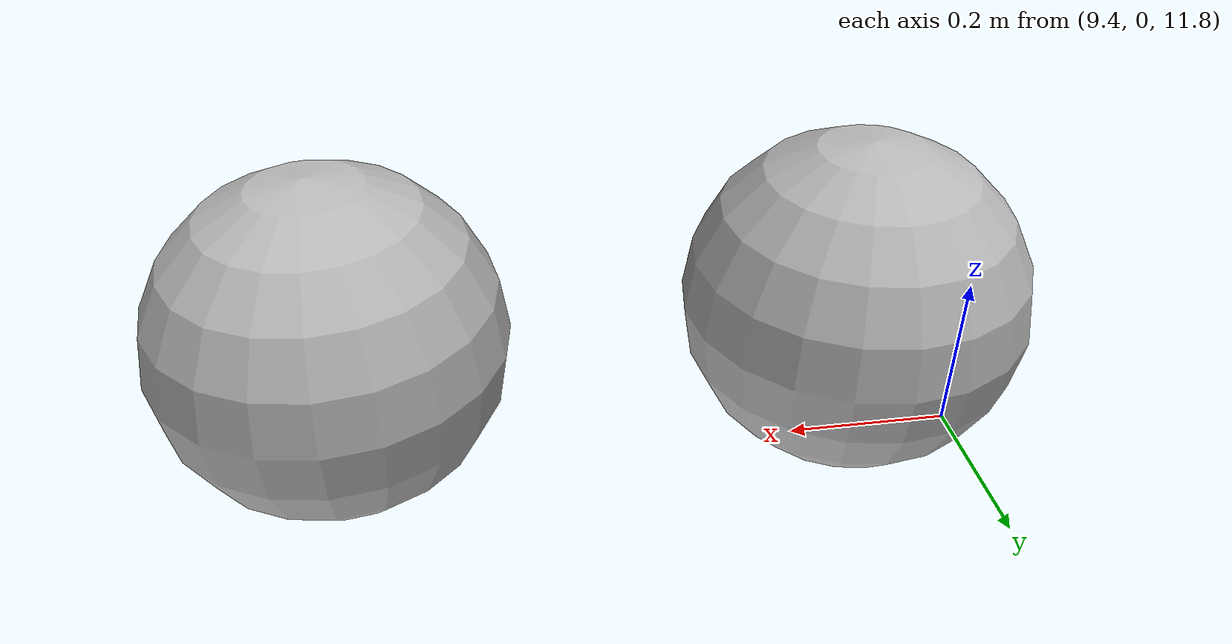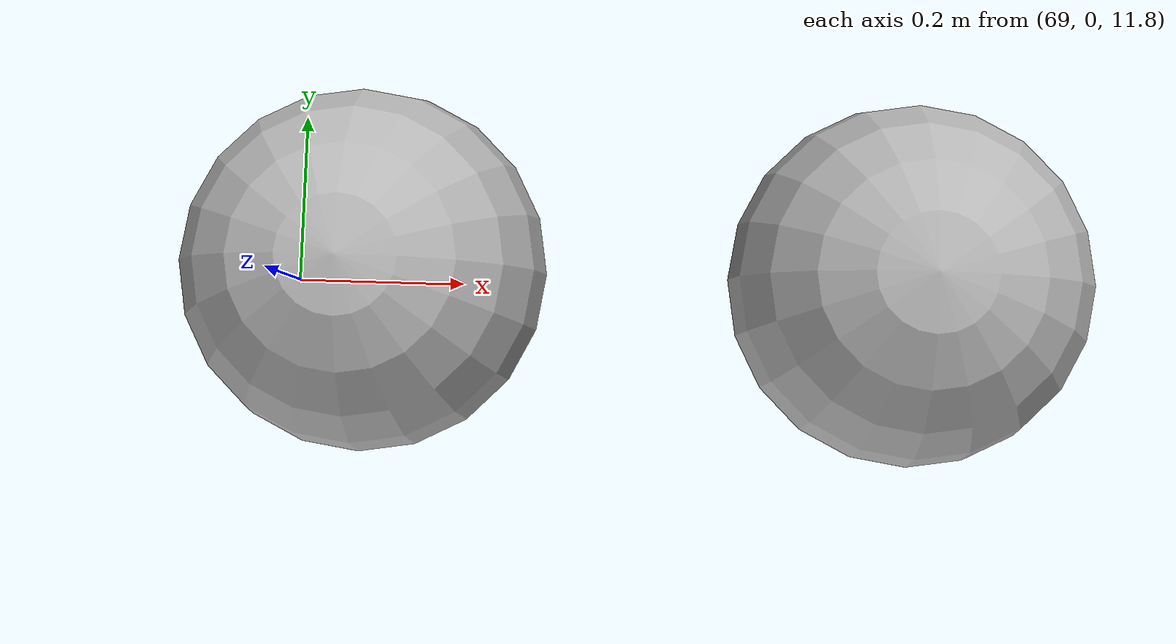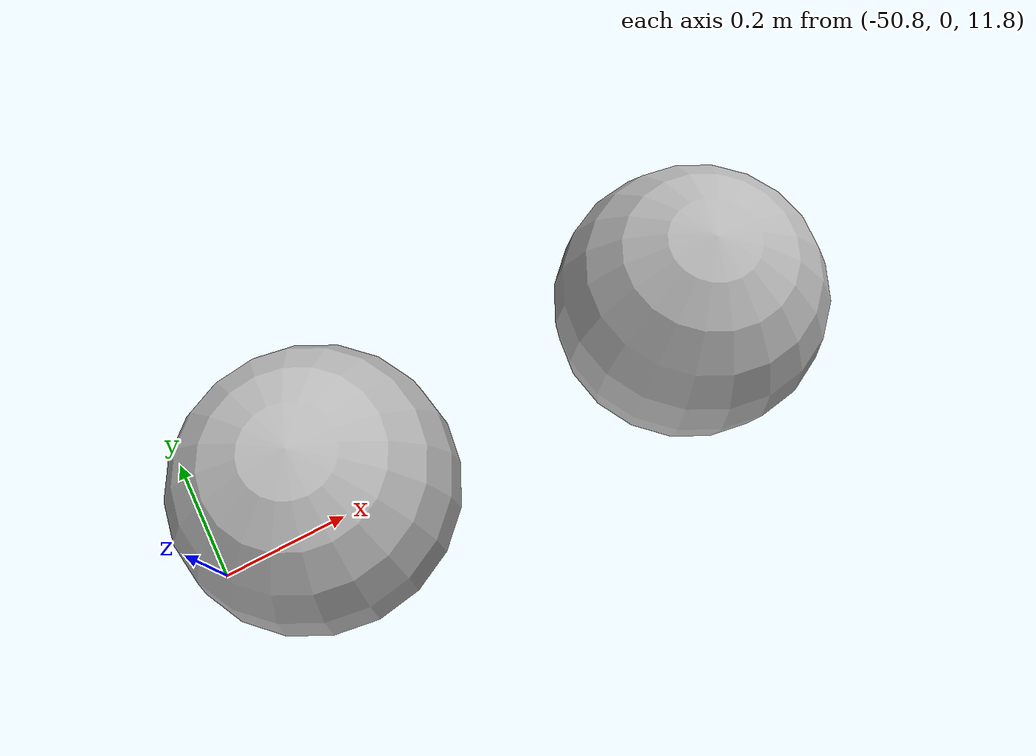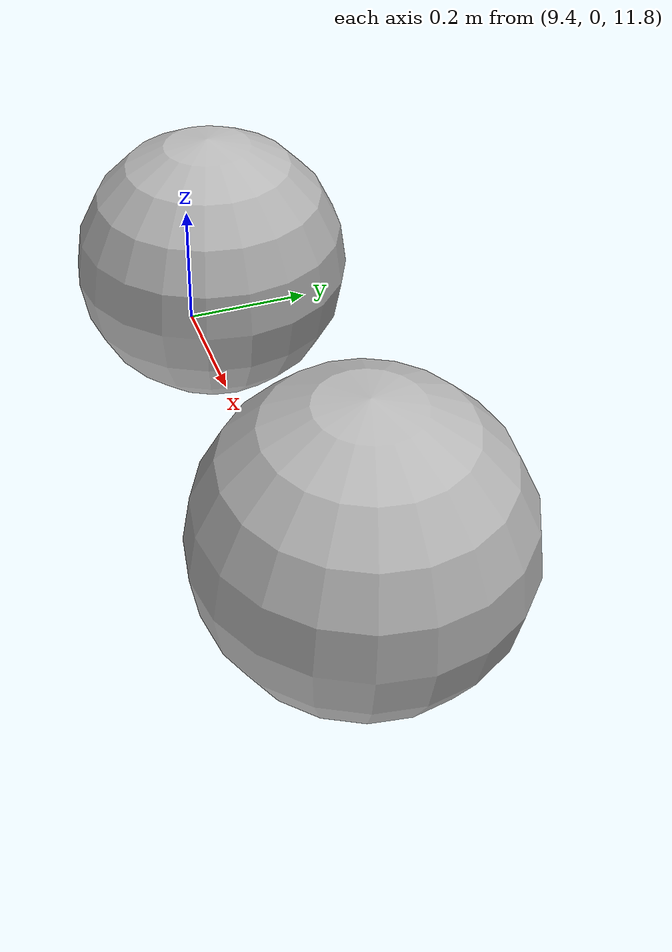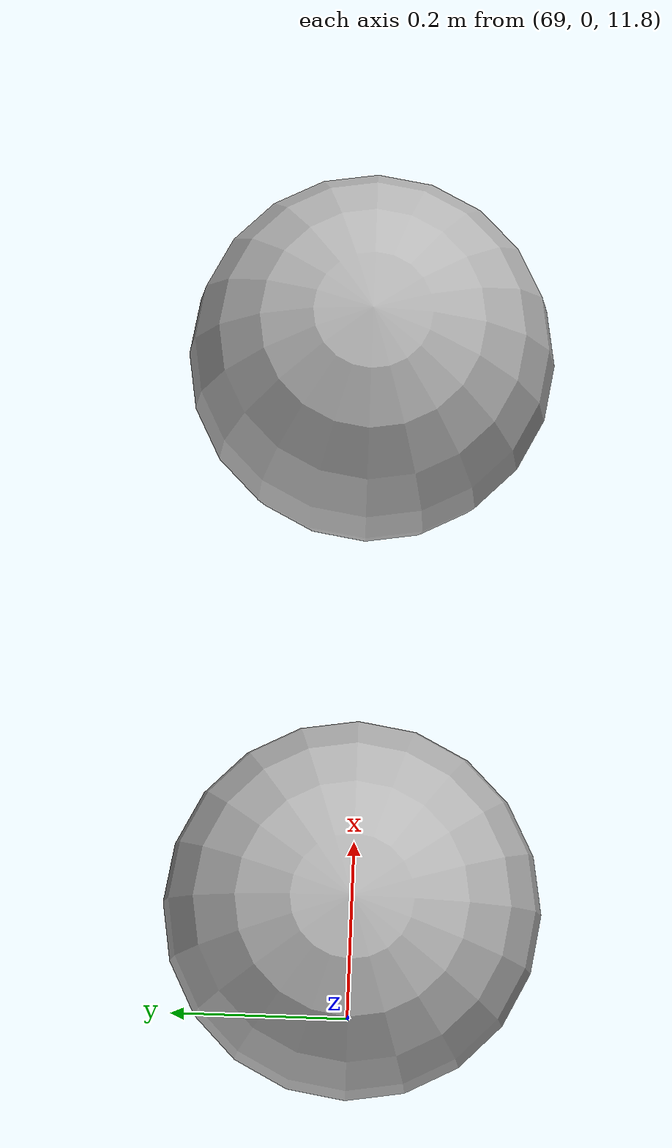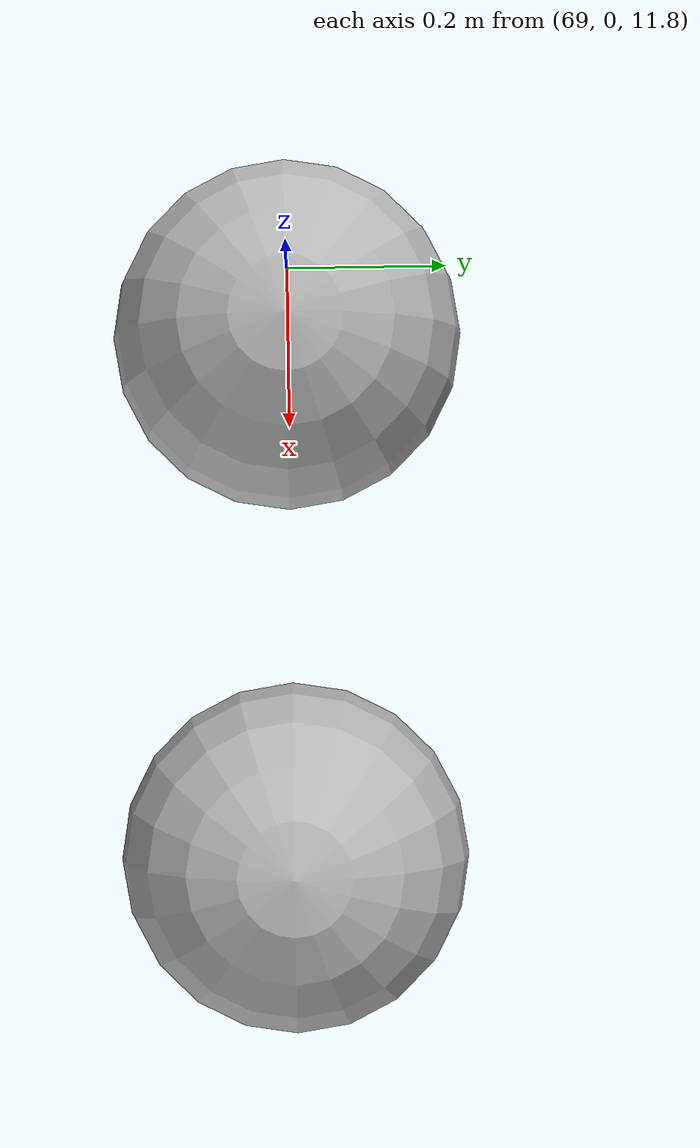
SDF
<sdf version="1.7">
 <world name="probe4">
  <plugin filename="ignition-gazebo-physics-system" name="ignition::gazebo::systems::Physics"/>
  <plugin filename="ignition-gazebo-scene-broadcaster-system" name="ignition::gazebo::systems::SceneBroadcaster"/>
  <gravity>0 0 -9.8</gravity>
  <model name="in33">
   <static>false</static>
   <pose>-50.603 0 12 0 0 0</pose>
   <link name="link">
    <collision name="collision"><geometry><sphere><radius>0.2</radius></sphere></geometry></collision>
    <visual name="visual"><geometry><sphere><radius>0.2</radius></sphere></geometry></visual>
   </link>
  </model>
  <model name="out33">
   <static>false</static>
   <pose>-50.003 0 12 0 0 0</pose>
   <link name="link">
    <collision name="collision"><geometry><sphere><radius>0.2</radius></sphere></geometry></collision>
    <visual name="visual"><geometry><sphere><radius>0.2</radius></sphere></geometry></visual>
   </link>
  </model>
  <model name="in65">
   <static>false</static>
   <pose>9.54615 0 12 0 0 0</pose>
   <link name="link">
    <collision name="collision"><geometry><sphere><radius>0.2</radius></sphere></geometry></collision>
    <visual name="visual"><geometry><sphere><radius>0.2</radius></sphere></geometry></visual>
   </link>
  </model>
  <model name="out65">
   <static>false</static>
   <pose>10.1462 0 12 0 0 0</pose>
   <link name="link">
    <collision name="collision"><geometry><sphere><radius>0.2</radius></sphere></geometry></collision>
    <visual name="visual"><geometry><sphere><radius>0.2</radius></sphere></geometry></visual>
   </link>
  </model>
  <model name="in17">
   <static>false</static>
   <pose>69.1118 0 12 0 0 0</pose>
   <link name="link">
    <collision name="collision"><geometry><sphere><radius>0.2</radius></sphere></geometry></collision>
    <visual name="visual"><geometry><sphere><radius>0.2</radius></sphere></geometry></visual>
   </link>
  </model>
  <model name="out17">
   <static>false</static>
   <pose>69.7118 0 12 0 0 0</pose>
   <link name="link">
    <collision name="collision"><geometry><sphere><radius>0.2</radius></sphere></geometry></collision>
    <visual name="visual"><geometry><sphere><radius>0.2</radius></sphere></geometry></visual>
   </link>
  </model>
 </world>
</sdf>
